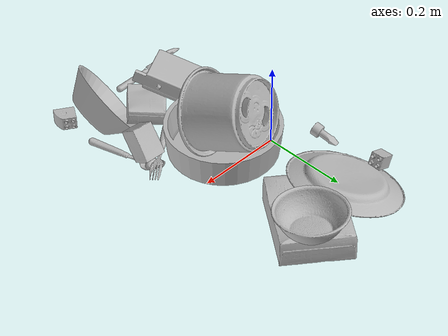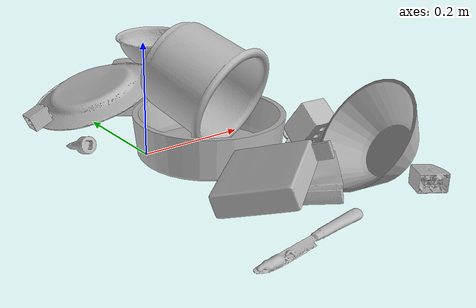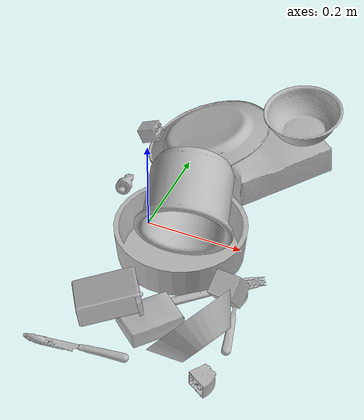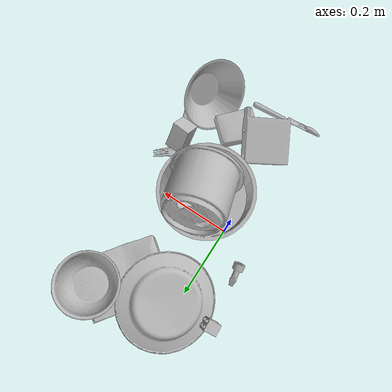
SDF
<sdf version="1.4">
  <world name="default">
    <light name="light1" type="point">
      <pose>0 0 1 0 0 0</pose>
      <diffuse>3 3 3 1</diffuse>
      <specular>3 3 3 1</specular>
    </light>
    <light name="light2" type="point">
      <pose>0 0.5 2 0 0 0</pose>
      <diffuse>1 1 1 1</diffuse>
      <specular>1 1 1 1</specular>
    </light>
    <light name="light3" type="point">
      <pose>0 0.5 2 0 0 0</pose>
      <diffuse>3 3 3 1</diffuse>
      <specular>3 3 3 1</specular>
    </light>
    <scene>
      <ambient>0.7 0.7 0.7</ambient>
    </scene>
    <model name="plate1">
      <link name="link_plate1">
        <collision name="default">
          <geometry>
            <mesh>
              <uri>model://pan_tefal/collision_meshes/collision.obj</uri>
              <scale>1.0 1.0 1.0</scale>
            </mesh>
          </geometry>
          <surface>
            <friction>
              <ode>
                <mu>0.5</mu>
                <mu2>0.5</mu2>
              </ode>
            </friction>
          <contact>
        <ode>
            <max_vel>0</max_vel>
            <min_depth>0.0001</min_depth>
            <kp>1e8</kp>
        </ode>
    </contact></surface>
        </collision>
        <visual name="default">
          <geometry>
            <mesh>
              <uri>model://pan_tefal/visual_meshes/visual.dae</uri>
              <scale>1.0 1.0 1.0</scale>
            </mesh>
          </geometry>
        </visual>
        <inertial>
          <mass>0.7050602436065674</mass>
          <pose>-0.00018002082651946694 3.279098018538207e-05 -0.008514933288097382 0.0008190340203057913 -0.0003301288692481796 -0.3318720847028622</pose>
          <inertia>
            <ixx>0.0048669963</ixx>
            <iyy>0.0048983735</iyy>
            <izz>0.008959204</izz>
            <ixy>0</ixy>
            <ixz>0</ixz>
            <iyz>0</iyz>
          </inertia>
        </inertial>
      </link>
      <pose>0.09586282819509506 -0.05425817891955376 0.0380500890314579 3.7317926485401644e-06 -1.44462320854611e-06 -2.3293229257825683</pose>
    </model>
    <model name="plate2">
      <link name="link_plate2">
        <collision name="default">
          <geometry>
            <mesh>
              <uri>model://plate/collision_meshes/collision.obj</uri>
              <scale>1.0 1.0 1.0</scale>
            </mesh>
          </geometry>
          <surface>
            <friction>
              <ode>
                <mu>0.5</mu>
                <mu2>0.5</mu2>
              </ode>
            </friction>
          <contact>
        <ode>
            <max_vel>0</max_vel>
            <min_depth>0.0001</min_depth>
            <kp>1e8</kp>
        </ode>
    </contact></surface>
        </collision>
        <visual name="default">
          <geometry>
            <mesh>
              <uri>model://plate/visual_meshes/visual.dae</uri>
              <scale>1.0 1.0 1.0</scale>
            </mesh>
          </geometry>
        </visual>
        <inertial>
          <mass>0.2442774623632431</mass>
          <pose>-0.0006044568726792932 0.0002782584633678198 -0.0010561984963715076 0.0022187778178748897 -0.0032254919076997847 0.45261061169843664</pose>
          <inertia>
            <ixx>0.0011427345</ixx>
            <iyy>0.001131805</iyy>
            <izz>0.002235018</izz>
            <ixy>0</ixy>
            <ixz>0</ixz>
            <iyz>0</iyz>
          </inertia>
        </inertial>
      </link>
      <pose>0.022558115422725677 0.24147404730319977 0.052168749272823334 3.118647996068636 -0.318046407806242 0.00027486988004539215</pose>
    </model>
    <model name="bowl1">
      <link name="link_bowl1">
        <collision name="default">
          <geometry>
            <mesh>
              <uri>model://bowl_a/collision_meshes/collision.obj</uri>
              <scale>1.0 1.0 1.0</scale>
            </mesh>
          </geometry>
          <surface>
            <friction>
              <ode>
                <mu>0.5</mu>
                <mu2>0.5</mu2>
              </ode>
            </friction>
          <contact>
        <ode>
            <max_vel>0</max_vel>
            <min_depth>0.0001</min_depth>
            <kp>1e8</kp>
        </ode>
    </contact></surface>
        </collision>
        <visual name="default">
          <geometry>
            <mesh>
              <uri>model://bowl_a/visual_meshes/visual.dae</uri>
              <scale>1.0 1.0 1.0</scale>
            </mesh>
          </geometry>
        </visual>
        <inertial>
          <mass>0.4025156497955322</mass>
          <pose>0.00027867371682077646 4.731032458948903e-05 -0.0013765298062935472 -0.00098054011869292 -0.0010938175729232503 -0.19123339485915475</pose>
          <inertia>
            <ixx>0.0011459808</ixx>
            <iyy>0.0011530165</iyy>
            <izz>0.0020381706</izz>
            <ixy>0</ixy>
            <ixz>0</ixz>
            <iyz>0</iyz>
          </inertia>
        </inertial>
      </link>
      <pose>0.2407248616218567 -0.29956069588661194 0.06403829157352448 0.2723824428374052 0.9305427827320604 3.120200718259749</pose>
    </model>
    <model name="bowl2">
      <link name="link_bowl2">
        <collision name="default">
          <geometry>
            <mesh>
              <uri>model://bowl/collision_meshes/collision.obj</uri>
              <scale>1.0 1.0 1.0</scale>
            </mesh>
          </geometry>
          <surface>
            <friction>
              <ode>
                <mu>0.5</mu>
                <mu2>0.5</mu2>
              </ode>
            </friction>
          <contact>
        <ode>
            <max_vel>0</max_vel>
            <min_depth>0.0001</min_depth>
            <kp>1e8</kp>
        </ode>
    </contact></surface>
        </collision>
        <visual name="default">
          <geometry>
            <mesh>
              <uri>model://bowl/visual_meshes/visual.dae</uri>
              <scale>1.0 1.0 1.0</scale>
            </mesh>
          </geometry>
        </visual>
        <inertial>
          <mass>0.04694162309169769</mass>
          <pose>0.00020445318659767509 -0.001030211104080081 -0.0008042642730288208 -0.01576400215318024 0.014546874726031786 0.7140460761636136</pose>
          <inertia>
            <ixx>0.0001078286</ixx>
            <iyy>0.000105419305</iyy>
            <izz>0.00018140484</izz>
            <ixy>0</ixy>
            <ixz>0</ixz>
            <iyz>0</iyz>
          </inertia>
        </inertial>
      </link>
      <pose>0.2063959836959839 0.30447301268577576 0.10082004964351654 -0.056548518761614694 -0.004761304694069477 2.485668638483018</pose>
    </model>
    <model name="silverware1">
      <link name="link_silverware1">
        <collision name="default">
          <geometry>
            <mesh>
              <uri>model://spoon/collision_meshes/collision.obj</uri>
              <scale>1.0 1.0 1.0</scale>
            </mesh>
          </geometry>
          <surface>
            <friction>
              <ode>
                <mu>0.5</mu>
                <mu2>0.5</mu2>
              </ode>
            </friction>
          <contact>
        <ode>
            <max_vel>0</max_vel>
            <min_depth>0.0001</min_depth>
            <kp>1e8</kp>
        </ode>
    </contact></surface>
        </collision>
        <visual name="default">
          <geometry>
            <mesh>
              <uri>model://spoon/visual_meshes/visual.dae</uri>
              <scale>1.0 1.0 1.0</scale>
            </mesh>
          </geometry>
        </visual>
        <inertial>
          <mass>0.03710600733757019</mass>
          <pose>-0.005526318680495024 -0.0016034168656915426 -0.0007271650829352438 0.03521602429168162 -0.03906583039209626 0.006150612964611125</pose>
          <inertia>
            <ixx>2.0638956e-06</ixx>
            <iyy>0.00014118708</iyy>
            <izz>0.00014220492</izz>
            <ixy>0</ixy>
            <ixz>0</ixz>
            <iyz>0</iyz>
          </inertia>
        </inertial>
      </link>
      <pose>0.2624514400959015 -0.18678875267505646 0.008387967012822628 0.006430897113659482 0.026944029631219443 1.8409869274770032</pose>
    </model>
    <model name="box1">
      <link name="link_box1">
        <collision name="default">
          <geometry>
            <mesh>
              <uri>model://cracker_box/collision_meshes/collision.obj</uri>
              <scale>1.0 1.0 1.0</scale>
            </mesh>
          </geometry>
          <surface>
            <friction>
              <ode>
                <mu>0.5</mu>
                <mu2>0.5</mu2>
              </ode>
            </friction>
          <contact>
        <ode>
            <max_vel>0</max_vel>
            <min_depth>0.0001</min_depth>
            <kp>1e8</kp>
        </ode>
    </contact></surface>
        </collision>
        <visual name="default">
          <geometry>
            <mesh>
              <uri>model://cracker_box/visual_meshes/visual.dae</uri>
              <scale>1.0 1.0 1.0</scale>
            </mesh>
          </geometry>
        </visual>
        <inertial>
          <mass>2.252173662185669</mass>
          <pose>0.0009464137838222086 0.0002543425071053207 -0.0017029535956680775 -0.000316207513865998 -0.011106489600465836 0.0025467954670329632</pose>
          <inertia>
            <ixx>0.0057285246</ixx>
            <iyy>0.00945892</iyy>
            <izz>0.013498746</izz>
            <ixy>0</ixy>
            <ixz>0</ixz>
            <iyz>0</iyz>
          </inertia>
        </inertial>
      </link>
      <pose>0.15097758173942566 0.2505840063095093 0.036384109407663345 -0.014051521131613766 -0.005015965730958683 0.9252671173076614</pose>
    </model>
    <model name="box2">
      <link name="link_box2">
        <collision name="default">
          <geometry>
            <mesh>
              <uri>model://pudding_box/collision_meshes/collision.obj</uri>
              <scale>1.0 1.0 1.0</scale>
            </mesh>
          </geometry>
          <surface>
            <friction>
              <ode>
                <mu>0.5</mu>
                <mu2>0.5</mu2>
              </ode>
            </friction>
          <contact>
        <ode>
            <max_vel>0</max_vel>
            <min_depth>0.0001</min_depth>
            <kp>1e8</kp>
        </ode>
    </contact></surface>
        </collision>
        <visual name="default">
          <geometry>
            <mesh>
              <uri>model://pudding_box/visual_meshes/visual.dae</uri>
              <scale>1.0 1.0 1.0</scale>
            </mesh>
          </geometry>
        </visual>
        <inertial>
          <mass>0.38795164227485657</mass>
          <pose>0.0004894821904599667 0.0008067885646596551 -0.0005188827635720372 0.005213102258195884 -0.006603798723254801 0.020079825158131615</pose>
          <inertia>
            <ixx>0.00043855933</ixx>
            <iyy>0.00029506587</iyy>
            <izz>0.0006476475</izz>
            <ixy>0</ixy>
            <ixz>0</ixz>
            <iyz>0</iyz>
          </inertia>
        </inertial>
      </link>
      <pose>0.1278727948665619 -0.26930347084999084 0.024066820740699768 3.0785976900069763 0.0804717791391138 2.4074448647156665</pose>
    </model>
    <model name="cup1">
      <link name="link_cup1">
        <collision name="default">
          <geometry>
            <mesh>
              <uri>model://i_cups/collision_meshes/collision.obj</uri>
              <scale>2.0 2.0 2.0</scale>
            </mesh>
          </geometry>
          <surface>
            <friction>
              <ode>
                <mu>0.5</mu>
                <mu2>0.5</mu2>
              </ode>
            </friction>
          <contact>
        <ode>
            <max_vel>0</max_vel>
            <min_depth>0.0001</min_depth>
            <kp>1e8</kp>
        </ode>
    </contact></surface>
        </collision>
        <visual name="default">
          <geometry>
            <mesh>
              <uri>model://i_cups/visual_meshes/visual.dae</uri>
              <scale>2.0 2.0 2.0</scale>
            </mesh>
          </geometry>
        </visual>
        <inertial>
          <mass>0.8781275153160095</mass>
          <pose>0.00022480404004454613 0.0003359464171808213 -0.0017158013070002198 -0.028983801808433914 -0.03987279960401974 -0.34589629987983705</pose>
          <inertia>
            <ixx>0.004863122</ixx>
            <iyy>0.004905971</iyy>
            <izz>0.005435325</izz>
            <ixy>0</ixy>
            <ixz>0</ixz>
            <iyz>0</iyz>
          </inertia>
        </inertial>
      </link>
      <pose>0.10000140219926834 -0.026458077132701874 0.12439589202404022 1.9667750039249632 -0.4994401771763281 0.0748806892740665</pose>
    </model>
    <model name="silverware2">
      <link name="link_silverware2">
        <collision name="default">
          <geometry>
            <mesh>
              <uri>model://fork/collision_meshes/collision.obj</uri>
              <scale>1.0 1.0 1.0</scale>
            </mesh>
          </geometry>
          <surface>
            <friction>
              <ode>
                <mu>0.5</mu>
                <mu2>0.5</mu2>
              </ode>
            </friction>
          <contact>
        <ode>
            <max_vel>0</max_vel>
            <min_depth>0.0001</min_depth>
            <kp>1e8</kp>
        </ode>
    </contact></surface>
        </collision>
        <visual name="default">
          <geometry>
            <mesh>
              <uri>model://fork/visual_meshes/visual.dae</uri>
              <scale>1.0 1.0 1.0</scale>
            </mesh>
          </geometry>
        </visual>
        <inertial>
          <mass>0.027322283014655113</mass>
          <pose>-0.02957003377377987 0.0004658822435885668 0.0003218860656488687 -0.013551502868568713 -0.01097783467120204 0.01445389601768567</pose>
          <inertia>
            <ixx>9.578007e-07</ixx>
            <iyy>7.133063e-05</iyy>
            <izz>7.175903e-05</izz>
            <ixy>0</ixy>
            <ixz>0</ixz>
            <iyz>0</iyz>
          </inertia>
        </inertial>
      </link>
      <pose>0.20914649963378906 -0.13643942773342133 0.015347696840763092 -2.9608028294337756 -0.09441913845965037 0.6671819191635372</pose>
    </model>
    <model name="silverware3">
      <link name="link_silverware3">
        <collision name="default">
          <geometry>
            <mesh>
              <uri>model://knife/collision_meshes/collision.obj</uri>
              <scale>1.0 1.0 1.0</scale>
            </mesh>
          </geometry>
          <surface>
            <friction>
              <ode>
                <mu>0.5</mu>
                <mu2>0.5</mu2>
              </ode>
            </friction>
          <contact>
        <ode>
            <max_vel>0</max_vel>
            <min_depth>0.0001</min_depth>
            <kp>1e8</kp>
        </ode>
    </contact></surface>
        </collision>
        <visual name="default">
          <geometry>
            <mesh>
              <uri>model://knife/visual_meshes/visual.dae</uri>
              <scale>1.0 1.0 1.0</scale>
            </mesh>
          </geometry>
        </visual>
        <inertial>
          <mass>0.036400385200977325</mass>
          <pose>-0.02378525584936142 0.0015275126788765192 5.0620175898075104e-05 0.07305876248658423 0.017248417790611748 -0.007409819472147862</pose>
          <inertia>
            <ixx>1.0331904e-06</ixx>
            <iyy>0.00013984439</iyy>
            <izz>0.00014017712</izz>
            <ixy>0</ixy>
            <ixz>0</ixz>
            <iyz>0</iyz>
          </inertia>
        </inertial>
      </link>
      <pose>0.021676862612366676 -0.3789982199668884 0.005810705944895744 2.8893533559551554 0.02591455130208021 -3.0430569588993923</pose>
    </model>
    <model name="toy1">
      <link name="link_toy1">
        <collision name="default">
          <geometry>
            <mesh>
              <uri>model://d_lego_duplo/collision_meshes/collision.obj</uri>
              <scale>1.0 1.0 1.0</scale>
            </mesh>
          </geometry>
          <surface>
            <friction>
              <ode>
                <mu>0.5</mu>
                <mu2>0.5</mu2>
              </ode>
            </friction>
          <contact>
        <ode>
            <max_vel>0</max_vel>
            <min_depth>0.0001</min_depth>
            <kp>1e8</kp>
        </ode>
    </contact></surface>
        </collision>
        <visual name="default">
          <geometry>
            <mesh>
              <uri>model://d_lego_duplo/visual_meshes/visual.dae</uri>
              <scale>1.0 1.0 1.0</scale>
            </mesh>
          </geometry>
        </visual>
        <inertial>
          <mass>0.060466669499874115</mass>
          <pose>0.002830563113093376 0.00016366162162739784 0.0008589806384406984 0.08010949306805684 -0.3835523000845375 0.0010296676643477064</pose>
          <inertia>
            <ixx>1.1705457e-05</ixx>
            <iyy>1.6613216e-05</iyy>
            <izz>1.6021117e-05</izz>
            <ixy>0</ixy>
            <ixz>0</ixz>
            <iyz>0</iyz>
          </inertia>
        </inertial>
      </link>
      <pose>0.2868737280368805 -0.36666861176490784 0.0162496380507946 1.5793376721805223 -0.013119798283658638 2.5827129713421573</pose>
    </model>
    <model name="toy2">
      <link name="link_toy2">
        <collision name="default">
          <geometry>
            <mesh>
              <uri>model://b_lego_duplo/collision_meshes/collision.obj</uri>
              <scale>1.0 1.0 1.0</scale>
            </mesh>
          </geometry>
          <surface>
            <friction>
              <ode>
                <mu>0.5</mu>
                <mu2>0.5</mu2>
              </ode>
            </friction>
          <contact>
        <ode>
            <max_vel>0</max_vel>
            <min_depth>0.0001</min_depth>
            <kp>1e8</kp>
        </ode>
    </contact></surface>
        </collision>
        <visual name="default">
          <geometry>
            <mesh>
              <uri>model://b_lego_duplo/visual_meshes/visual.dae</uri>
              <scale>1.0 1.0 1.0</scale>
            </mesh>
          </geometry>
        </visual>
        <inertial>
          <mass>0.030077241361141205</mass>
          <pose>-0.00011053079651901498 -9.15232340048533e-06 0.0019294286612421274 -0.037494862621914114 -0.026354003688684128 0.4518993950044185</pose>
          <inertia>
            <ixx>6.155532e-06</ixx>
            <iyy>6.196912e-06</iyy>
            <izz>5.4843786e-06</izz>
            <ixy>0</ixy>
            <ixz>0</ixz>
            <iyz>0</iyz>
          </inertia>
        </inertial>
      </link>
      <pose>-0.09976310282945633 0.23106086254119873 0.023178208619356155 0.053898849304785154 -1.1568939884027492 -3.1287386558133496</pose>
    </model>
    <model name="toy3">
      <link name="link_toy3">
        <collision name="default">
          <geometry>
            <mesh>
              <uri>model://nine_hole_peg_test/collision_meshes/collision.obj</uri>
              <scale>1.0 1.0 1.0</scale>
            </mesh>
          </geometry>
          <surface>
            <friction>
              <ode>
                <mu>0.5</mu>
                <mu2>0.5</mu2>
              </ode>
            </friction>
          <contact>
        <ode>
            <max_vel>0</max_vel>
            <min_depth>0.0001</min_depth>
            <kp>1e8</kp>
        </ode>
    </contact></surface>
        </collision>
        <visual name="default">
          <geometry>
            <mesh>
              <uri>model://nine_hole_peg_test/visual_meshes/visual.dae</uri>
              <scale>1.0 1.0 1.0</scale>
            </mesh>
          </geometry>
        </visual>
        <inertial>
          <mass>0.9411391019821167</mass>
          <pose>-0.0046173869632184505 -0.009647615253925323 2.646069333422929e-05 -0.0014666795036135398 0.0007194176186147546 -0.6342417663820423</pose>
          <inertia>
            <ixx>0.0014716258</ixx>
            <iyy>0.0013740414</iyy>
            <izz>0.0025787223</izz>
            <ixy>0</ixy>
            <ixz>0</ixz>
            <iyz>0</iyz>
          </inertia>
        </inertial>
      </link>
      <pose>0.04592573642730713 -0.27258729934692383 0.05184398964047432 2.8259638074016213 -0.1745323160748031 0.5807528342872085</pose>
    </model>
    <model name="toy4">
      <link name="link_toy4">
        <collision name="default">
          <geometry>
            <mesh>
              <uri>model://foam_brick/collision_meshes/collision.obj</uri>
              <scale>1.0 1.0 1.0</scale>
            </mesh>
          </geometry>
          <surface>
            <friction>
              <ode>
                <mu>0.5</mu>
                <mu2>0.5</mu2>
              </ode>
            </friction>
          <contact>
        <ode>
            <max_vel>0</max_vel>
            <min_depth>0.0001</min_depth>
            <kp>1e8</kp>
        </ode>
    </contact></surface>
        </collision>
        <visual name="default">
          <geometry>
            <mesh>
              <uri>model://foam_brick/visual_meshes/visual.dae</uri>
              <scale>1.0 1.0 1.0</scale>
            </mesh>
          </geometry>
        </visual>
        <inertial>
          <mass>0.1527709662914276</mass>
          <pose>-0.00025224717683158815 0.0003458428254816681 -0.00025321016437374055 -0.29402015796081304 0.017274438268763303 -0.0007449889855682301</pose>
          <inertia>
            <ixx>6.673321e-05</ixx>
            <iyy>0.00010654301</iyy>
            <izz>0.00010789704</izz>
            <ixy>0</ixy>
            <ixz>0</ixz>
            <iyz>0</iyz>
          </inertia>
        </inertial>
      </link>
      <pose>0.2417711466550827 -0.15449294447898865 0.0497419647872448 -3.112332380342273 0.927547527688413 1.5192069798271233</pose>
    </model>
    <model name="toy5">
      <link name="link_toy5">
        <collision name="default">
          <geometry>
            <mesh>
              <uri>model://e_toy_airplane/collision_meshes/collision.obj</uri>
              <scale>1.0 1.0 1.0</scale>
            </mesh>
          </geometry>
          <surface>
            <friction>
              <ode>
                <mu>0.5</mu>
                <mu2>0.5</mu2>
              </ode>
            </friction>
          <contact>
        <ode>
            <max_vel>0</max_vel>
            <min_depth>0.0001</min_depth>
            <kp>1e8</kp>
        </ode>
    </contact></surface>
        </collision>
        <visual name="default">
          <geometry>
            <mesh>
              <uri>model://e_toy_airplane/visual_meshes/visual.dae</uri>
              <scale>1.0 1.0 1.0</scale>
            </mesh>
          </geometry>
        </visual>
        <inertial>
          <mass>0.01976589486002922</mass>
          <pose>0.00011740453192032874 -2.2483010980067775e-05 -0.011187207885086536 0.005518504435964777 0.009228288570086122 0.15041432989491213</pose>
          <inertia>
            <ixx>6.0327766e-06</ixx>
            <iyy>5.971064e-06</iyy>
            <izz>1.813087e-06</izz>
            <ixy>0</ixy>
            <ixz>0</ixz>
            <iyz>0</iyz>
          </inertia>
        </inertial>
      </link>
      <pose>-0.08728588372468948 0.08458974212408066 0.010173812508583069 2.971577963455161 -1.2657865681161906 1.9163138236813189</pose>
    </model>
  <physics type="ode">
      <max_contacts>50</max_contacts>
      <ode>
        <solver>
          <type>quick</type>
          <iters>75</iters>
        </solver>
        <constraints>
          <contact_max_correcting_vel>0</contact_max_correcting_vel>
          <contact_surface_layer>0</contact_surface_layer>
        </constraints>
      </ode>
    </physics></world>
</sdf>
